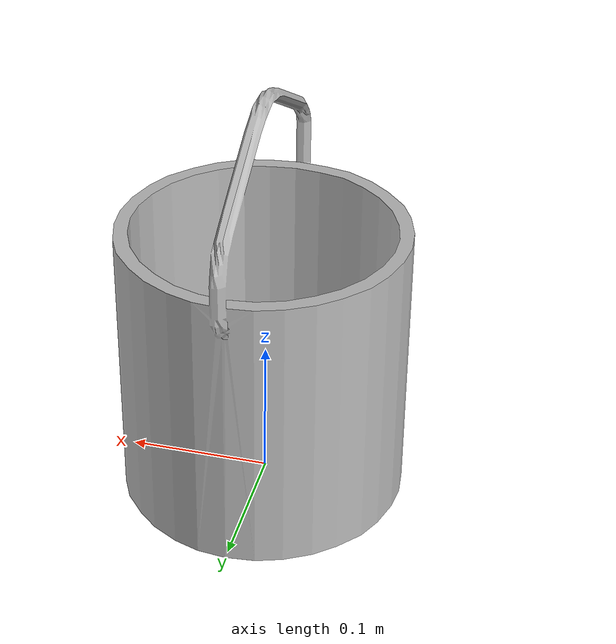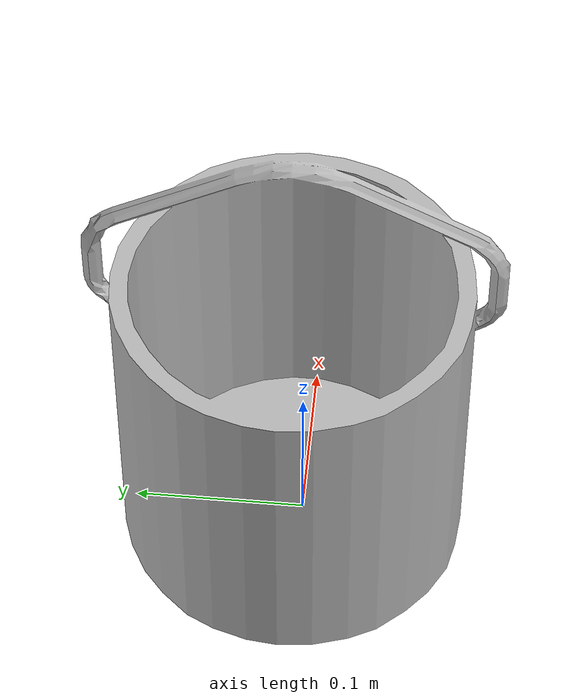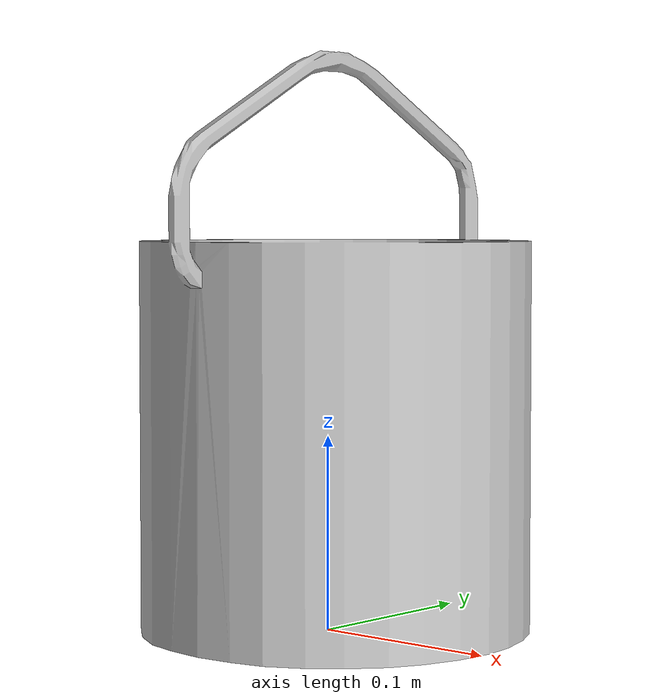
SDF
<?xml version="1.0" ?>
<sdf version="1.5">
  <model name="seau">
    <link name="link">
      <pose>0 0 0 0 0 0 </pose>
      <inertial>
        <mass>5</mass>
        <inertia>
				  <ixx>0.05</ixx>
				  <ixy>0</ixy>
				  <ixz>0</ixz>
				  <iyy>0.05</iyy>
					<izz>0.05</izz>
        </inertia>
      </inertial>
      <visual name="visual">
        <geometry>
 	  			<mesh>
            <uri>model://Seau/meshes/seau.stl</uri>
				  </mesh>
        </geometry>
      </visual>
      <collision name="collision">
        <geometry>
 	  			<mesh>
            <uri>model://Seau/meshes/seau.stl</uri>
				  </mesh>
        </geometry>
      </collision>
    </link>
  </model>
</sdf>
